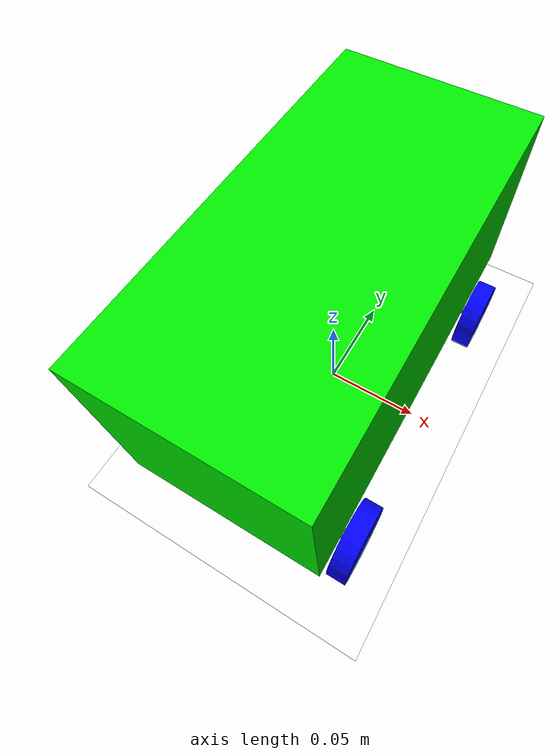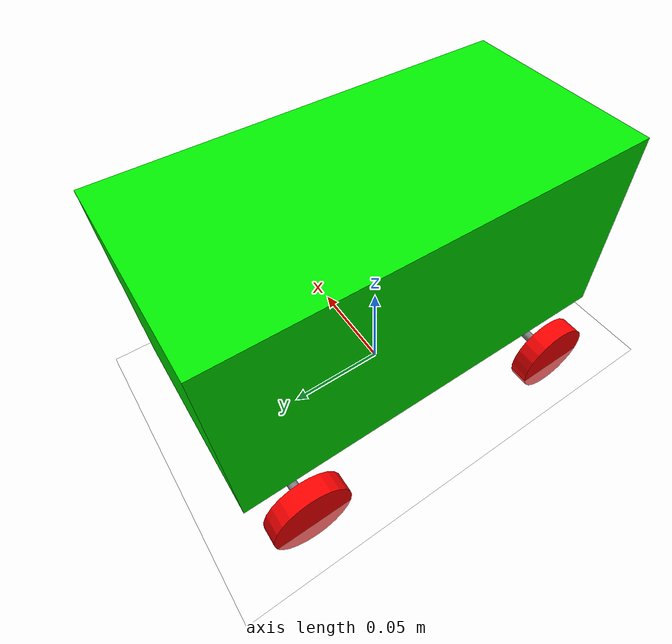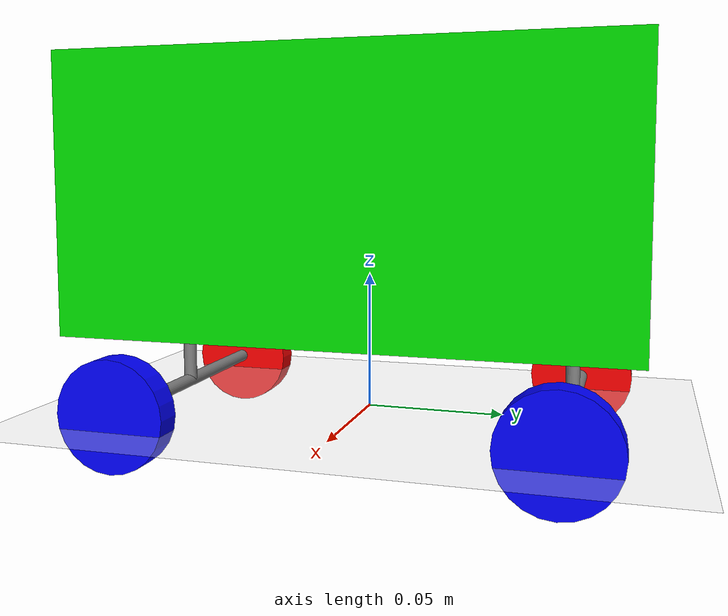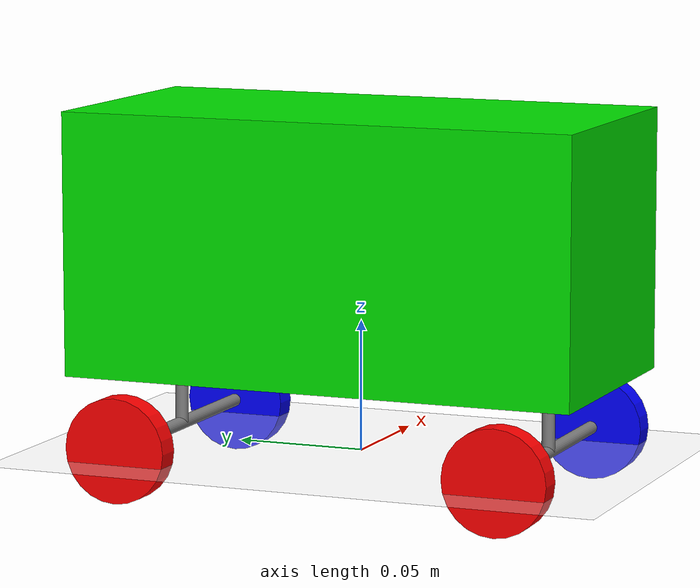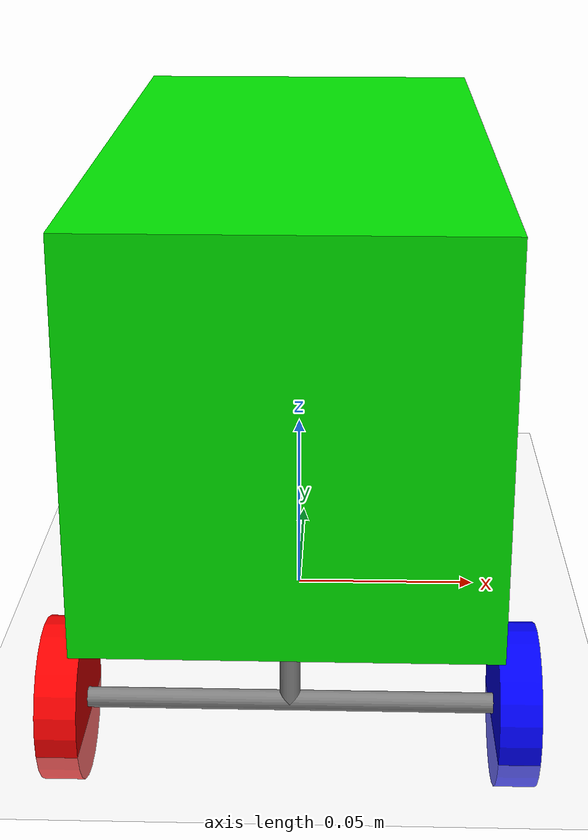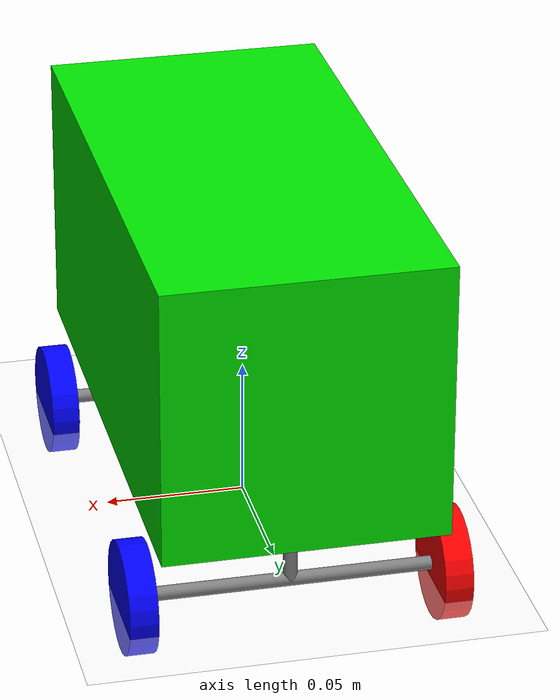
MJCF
<mujoco>
    <asset>
        <texture type="skybox" builtin="gradient" rgb1="1 1 1" rgb2=".6 .8 1" width="256" height="256"/>
    </asset>
    <worldbody>
        <light diffuse=".5 .5 .5" pos="0 0 3" dir="0 0 -1"/>

        <!-- surface -->
        <geom type="plane" size="1 1 0.1" rgba="1 1 1 1" friction="1.0 0.1 0.01"/>
        <body pos="0 0 0.08">

            <!-- box -->
            <joint type="free"/>
            <geom type="box" size=".05 .1 .05" rgba="0 .9 0 1" mass="1.0"/>
            <body pos="0 .075 -.05">
                <geom type="cylinder" size="0.0025" fromto="0 0 0 0 0 -.025"/>
                <body pos="0 0 -.025">
                    <geom type="cylinder" size="0.0025" fromto="-.05 0 0 .05 0 0"/>
                    <body pos=".05 0 0">
                        <joint name="front_right_steering_joint" type="hinge" axis="0 0 1" limited="true" range="-0.52 0.52" damping="0.5"/>
                        <joint name="front_right_wheel_joint" type="hinge" axis="1 0 0" damping="0.5"/>
                        <geom type="cylinder" size="0.02 0.01" fromto="0 0 0 .01 0 0" rgba="0 0 1 1" friction="1.0 0.1 0.01" mass="0.25"/>                    </body>
                    <body pos="-.06 0 0">
                        <joint name="front_left_steering_joint" type="hinge" axis="0 0 1" limited="true" range="-0.52 0.52" damping="0.5"/>
                        <joint name="front_left_wheel_joint" type="hinge" axis="1 0 0" damping="0.5"/>
                        <geom type="cylinder" size="0.02 0.01" fromto="0 0 0 .01 0 0" rgba="1 0 0 1" friction="1.0 0.1 0.01" mass="0.25"/>
                    </body>
                </body>
            </body>
            <body pos="0 -.075 -.05">
                <geom type="cylinder" size="0.0025" fromto="0 0 0 0 0 -.025"/>
                <body pos="0 0 -.025">
                    <geom type="cylinder" size="0.0025" fromto="-.05 0 0 .05 0 0"/>
                    <body pos=".05 0 0">
                        <joint name="rear_right_wheel_joint" type="hinge" axis="1 0 0" damping="2.0"/>
                        <geom type="cylinder" size="0.02 0.01" fromto="0 0 0 .01 0 0" rgba="0 0 1 1" friction="1.0 0.1 0.01" mass="0.25"/>
                        <geom type="box" size="0.001 0.018 0.004" pos="0.005 0 0" rgba="1 1 0 1" mass="0.0001"/>
                        <geom type="box" size="0.001 0.004 0.018" pos="0.005 0 0" rgba="1 1 0 1" mass="0.0001"/>
                    </body>
                    <body pos="-.06 0 0">
                        <joint name="rear_left_wheel_joint" type="hinge" axis="1 0 0" damping="2.0"/>
                        <geom type="cylinder" size="0.02 0.01" fromto="0 0 0 .01 0 0" rgba="1 0 0 1" friction="1.0 0.1 0.01" mass="0.25"/>
                        <geom type="box" size="0.001 0.018 0.004" pos="0.005 0 0" rgba="1 1 0 1" mass="0.0001"/>
                        <geom type="box" size="0.001 0.004 0.018" pos="0.005 0 0" rgba="1 1 0 1" mass="0.0001"/>
                    </body>
                </body>
            </body>
        </body>
    </worldbody>

    <!-- mujoco_ros2_control -->
    <actuator>

        <!-- steering: ±1 N·m torque limit -->
        <motor name="front_right_steering" joint="front_right_steering_joint" ctrlrange="-25 25"/>
        <motor name="front_left_steering" joint="front_left_steering_joint" ctrlrange="-25 25"/>

        <!-- traction: ±2 N·m torque limit -->
        <motor name="rear_right_wheel" joint="rear_right_wheel_joint" ctrlrange="-25 25"/>
        <motor name="rear_left_wheel" joint="rear_left_wheel_joint" ctrlrange="-25 25"/>

    </actuator>

</mujoco>
